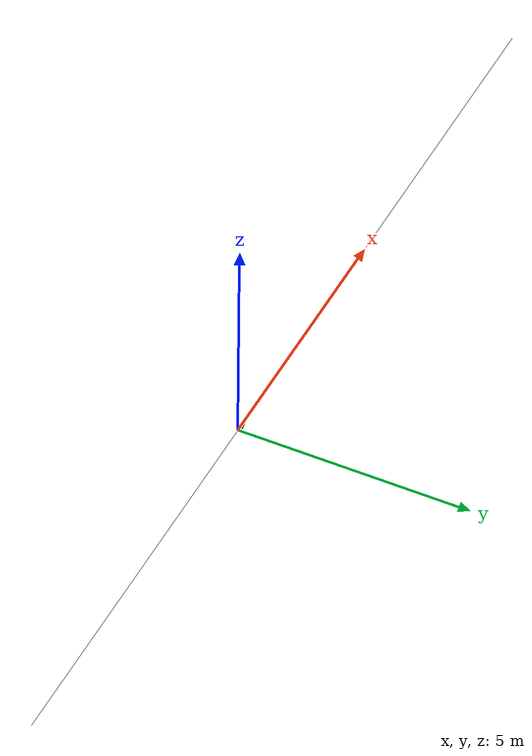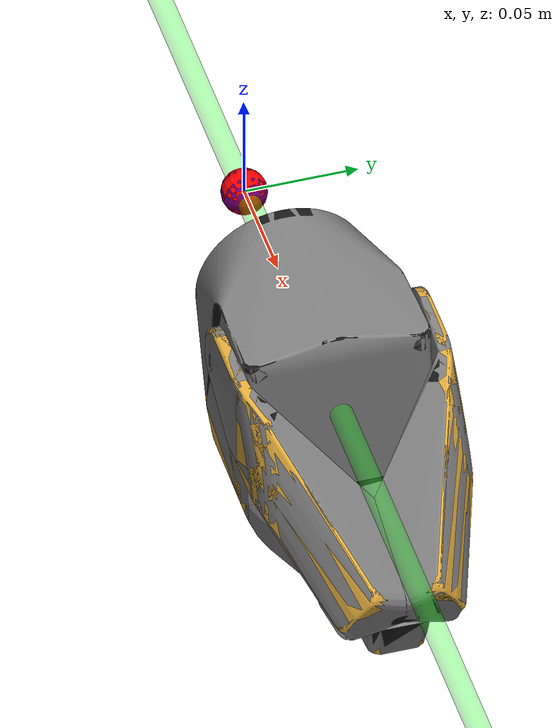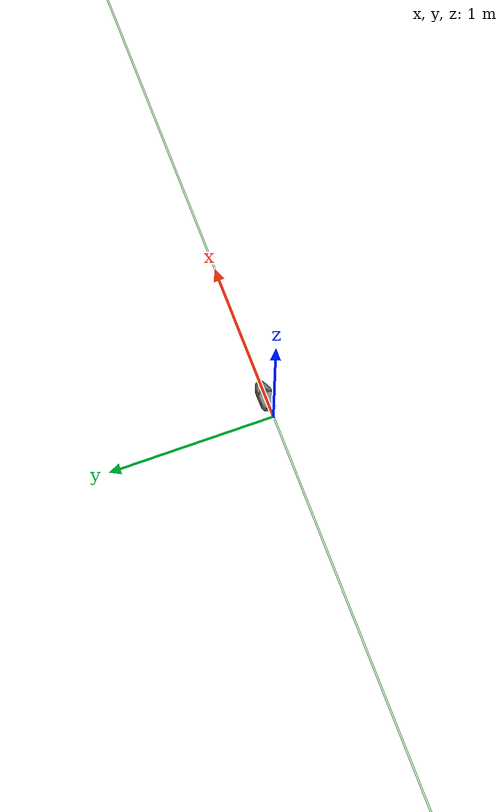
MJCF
<mujoco model="bd gripper">
  <compiler angle="radian" />
  <option gravity="0 0 0"/>
  <option integrator="implicitfast" cone="elliptic" impratio="100"/>
  <visual>
    <global ellipsoidinertia="true"/>
  </visual>

<asset>
    <material name="BlackAbs" rgba="0.1 0.1 0.1 1"/>
    <material name="wrap" rgba="0.878431 0.666666 0.227450 1"/>
    <mesh name="arm_link_wr1_0" file="meshes/bd_gripper/arm_link_wr1_0.obj"/>
    <mesh name="arm_link_wr1_1" file="meshes/bd_gripper/arm_link_wr1_1.obj"/>
    <mesh name="arm_link_fngr_0" file="meshes/bd_gripper/arm_link_fngr_0.obj"/>
    <mesh name="arm_link_fngr_1" file="meshes/bd_gripper/arm_link_fngr_1.obj"/>
    <mesh name="arm_link_wr1_coll" file="meshes/bd_gripper/arm_link_wr1.obj"/>

    <mesh name="front_jaw_coll" file="meshes/bd_gripper/front_jaw.obj"/>
    <mesh name="middle_jaw_coll" file="meshes/bd_gripper/middle_jaw.obj"/>
    <mesh name="jaw_tooth_coll" file="meshes/bd_gripper/jaw_tooth.obj"/>
    <mesh name="left_hinge_coll" file="meshes/bd_gripper/left_hinge.obj"/>
    <mesh name="left_finger_coll" file="meshes/bd_gripper/left_finger.obj"/>
    <mesh name="left_tooth_coll" file="meshes/bd_gripper/left_tooth.obj"/>
    <mesh name="right_hinge_coll" file="meshes/bd_gripper/right_hinge.obj"/>
    <mesh name="right_finger_coll" file="meshes/bd_gripper/right_finger.obj"/>
    <mesh name="right_tooth_coll" file="meshes/bd_gripper/right_tooth.obj"/>
  </asset>

  <default>
    <default class="spot_arm">
      <geom solref="0.004 1"/>
      <motor ctrlrange="-33.5 33.5"  ctrllimited="true"/>
    </default>
    <default class="spot_arm_visual">
      <joint actuatorfrcrange="-1000 1000"/>
      <position kp="500" kv="40" inheritrange="1"/>
      <geom group="1" type="mesh" contype="0" conaffinity="0" solref="0.004 1"/>
    </default>
    <default class="spot_arm_collision">
        <joint actuatorfrcrange="-1000 1000"/>
        <position kp="500" kv="40" inheritrange="1"/>
        <geom group="0" type="mesh" solref="0.004 1"/>
    </default>
  </default>

  <worldbody>
    <body name="right_gripper" pos="0 0 0" quat="1 0 0 0">
        <site name="ft_frame" pos="0 0 0" size="0.01 0.01 0.01" rgba="1 0 0 1" type="sphere" group="1"/>
        <inertial pos="0 0 0.0" quat="0.707107 0.707107 0 0" mass="0.3" diaginertia="0.09 0.07 0.05" />
        <!-- This site was added for visualization. -->
        <body name="eef" pos="0 0 0.0" quat="0.707 0. -0.707 0.">
            <site name="grip_site" pos="0 0 0" size="0.01 0.01 0.01" rgba="0 0 1 0.5" type="sphere" group="1"/>
            <site name="ee_x" pos="0.1 0 0" size="0.005 .1"  quat="0.707105  0 0.707108 0 " rgba="1 0 0 0" type="cylinder" group="1"/>
            <site name="ee_y" pos="0 0.1 0" size="0.005 .1" quat="0.707105 0.707108 0 0" rgba="0 1 0 0" type="cylinder" group="1"/>
            <site name="ee_z" pos="0 0 0.1" size="0.005 .1" quat="1 0 0 0" rgba="0 0 1 0" type="cylinder" group="1"/>
            <!-- This site was added for visualization. -->
            <site name="grip_site_cylinder" pos="0 0 0" size="0.005 10" rgba="0 1 0 0.3" type="cylinder" group="1"/>
        </body>
        <body name="stator">
        <geom mesh="arm_link_wr1_0" material="wrap" class="spot_arm_visual"/>
        <geom mesh="arm_link_wr1_1" material="BlackAbs" class="spot_arm_visual"/>
        <geom class="spot_arm_collision" mesh="arm_link_wr1_coll"/>
        <geom class="spot_arm_collision" mesh="front_jaw_coll"/>
        <geom class="spot_arm_collision" mesh="middle_jaw_coll"/>
        <geom class="spot_arm_collision" mesh="jaw_tooth_coll"/>
        <body name="mover" pos="0.11745 0 0.01482">
            <inertial pos="0.0478787 -0.000206768 -0.0162879" quat="0 1 0 1" mass="0.2"
            diaginertia="0.000391278 0.000300713 0.000143996"/>
            <joint name="arm_f1x" axis="0 1 0" range="-1.57 0"  damping="0.2" armature="1.0" frictionloss="0.1"/>
            <geom mesh="arm_link_fngr_0" material="wrap" class="spot_arm_visual"/>
            <geom mesh="arm_link_fngr_1" material="BlackAbs" class="spot_arm_visual"/>
            <geom class="spot_arm_collision" mesh="left_hinge_coll"/>
            <geom class="spot_arm_collision" mesh="left_finger_coll"/>
            <geom class="spot_arm_collision" mesh="left_tooth_coll"/>
            <geom class="spot_arm_collision" mesh="right_hinge_coll"/>
            <geom class="spot_arm_collision" mesh="right_finger_coll"/>
            <geom class="spot_arm_collision" mesh="right_tooth_coll"/>
        </body>
        </body>

    </body>

  </worldbody>
  <contact>
      <exclude name="exclude_two_bodies" body1="stator" body2="mover"/>
  </contact>
  <actuator>
    <position class="spot_arm" name="arm_f1x" joint="arm_f1x" ctrllimited="true" ctrlrange="-1.57 0" forcelimited="true" forcerange="-200 200" kp="300" kv="40" />
  </actuator>
  <sensor>
      <force name="force_ee" site="ft_frame"/>
      <torque name="torque_ee" site="ft_frame"/>
  </sensor>
</mujoco>
